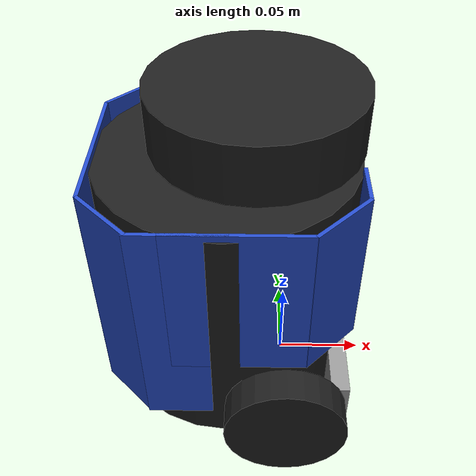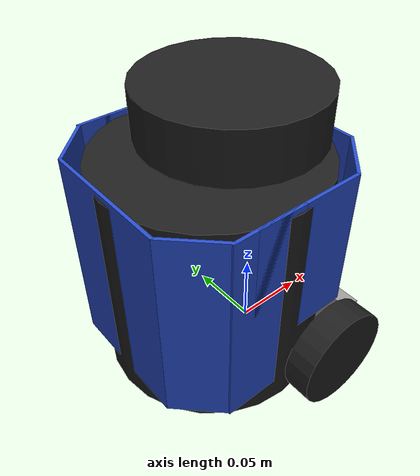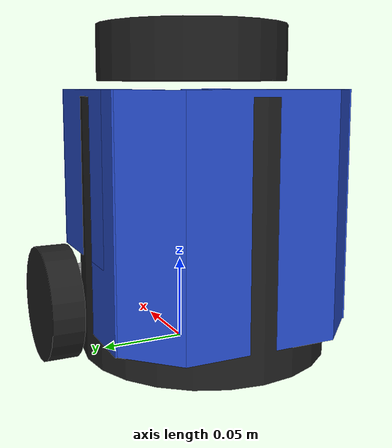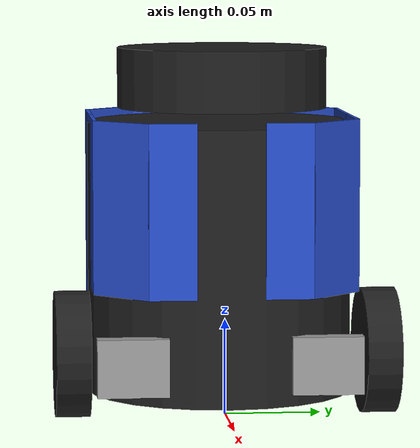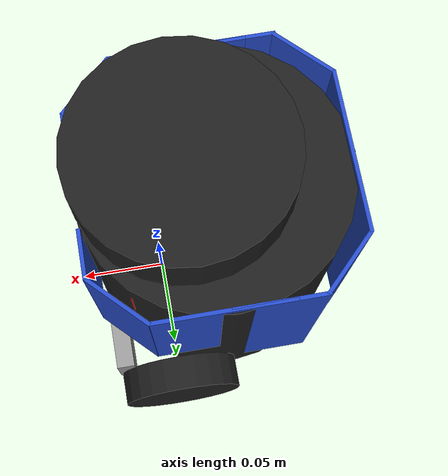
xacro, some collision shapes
<?xml version="1.0" ?>
<robot name="turtlebot3_burger" xmlns:xacro="http://ros.org/wiki/xacro">
  <xacro:include filename="$(find turtlebot3_description)/urdf/common_properties.xacro"/>
  <xacro:include filename="$(find turtlebot3_dqn)/goal_3rb/urdf/turtlebot3_burger_blue.gazebo.xacro"/>

  <link name="base_footprint"/>

  <joint name="base_joint" type="fixed">
    <parent link="base_footprint"/>
    <child link="base_link"/>
    <origin xyz="0.0 0.0 0.010" rpy="0 0 0"/>
  </joint>

  <link name="base_link">
    <visual>
      <origin xyz="-0.032 0 0.0" rpy="0 0 0"/>
      <geometry>
        <mesh filename="package://turtlebot3_description/meshes/bases/burger_base.stl" scale="0.001 0.001 0.001"/>
      </geometry>
      <material name="light_black"/>
    </visual>

    <collision>
      <origin xyz="-0.032 0 0.070" rpy="0 0 0"/>
      <geometry>
        <cylinder length="0.143" radius="0.070"/>
      </geometry>
    </collision>

    <inertial>
      <origin xyz="0 0 0" rpy="0 0 0"/>
      <mass value="8.2573504e-01"/>
      <inertia ixx="2.2124416e-03" ixy="-1.2294101e-05" ixz="3.4938785e-05"
               iyy="2.1193702e-03" iyz="-5.0120904e-06"
               izz="2.0064271e-03" />
    </inertial>
  </link>

  <joint name="wheel_left_joint" type="continuous">
    <parent link="base_link"/>
    <child link="wheel_left_link"/>
    <origin xyz="0.0 0.08 0.023" rpy="-1.57 0 0"/>
    <axis xyz="0 0 1"/>
  </joint>

  <link name="wheel_left_link">
    <visual>
      <origin xyz="0 0 0" rpy="1.57 0 0"/>
      <geometry>
        <mesh filename="package://turtlebot3_description/meshes/wheels/left_tire.stl" scale="0.001 0.001 0.001"/>
      </geometry>
      <material name="dark"/>
    </visual>

    <collision>
      <origin xyz="0 0 0" rpy="0 0 0"/>
      <geometry>
        <cylinder length="0.018" radius="0.033"/>
      </geometry>
    </collision>

    <inertial>
      <origin xyz="0 0 0" />
      <mass value="2.8498940e-02" />
      <inertia ixx="1.1175580e-05" ixy="-4.2369783e-11" ixz="-5.9381719e-09"
               iyy="1.1192413e-05" iyz="-1.4400107e-11"
               izz="2.0712558e-05" />
      </inertial>
  </link>

  <joint name="wheel_right_joint" type="continuous">
    <parent link="base_link"/>
    <child link="wheel_right_link"/>
    <origin xyz="0.0 -0.080 0.023" rpy="-1.57 0 0"/>
    <axis xyz="0 0 1"/>
  </joint>

  <link name="wheel_right_link">
    <visual>
      <origin xyz="0 0 0" rpy="1.57 0 0"/>
      <geometry>
        <mesh filename="package://turtlebot3_description/meshes/wheels/right_tire.stl" scale="0.001 0.001 0.001"/>
      </geometry>
      <material name="dark"/>
    </visual>

    <collision>
      <origin xyz="0 0 0" rpy="0 0 0"/>
      <geometry>
        <cylinder length="0.018" radius="0.033"/>
      </geometry>
    </collision>

    <inertial>
      <origin xyz="0 0 0" />
      <mass value="2.8498940e-02" />
      <inertia ixx="1.1175580e-05" ixy="-4.2369783e-11" ixz="-5.9381719e-09"
               iyy="1.1192413e-05" iyz="-1.4400107e-11"
               izz="2.0712558e-05" />
      </inertial>
  </link>

  <joint name="caster_back_joint" type="fixed">
    <parent link="base_link"/>
    <child link="caster_back_link"/>
    <origin xyz="-0.081 0 -0.004" rpy="-1.57 0 0"/>
  </joint>

  <link name="caster_back_link">
    <collision>
      <origin xyz="0 0.001 0" rpy="0 0 0"/>
      <geometry>
        <box size="0.030 0.009 0.020"/>
      </geometry>
    </collision>

    <inertial>
      <origin xyz="0 0 0" />
      <mass value="0.005" />
      <inertia ixx="0.001" ixy="0.0" ixz="0.0"
               iyy="0.001" iyz="0.0"
               izz="0.001" />
    </inertial>
  </link>

  <joint name="imu_joint" type="fixed">
    <parent link="base_link"/>
    <child link="imu_link"/>
    <origin xyz="-0.032 0 0.068" rpy="0 0 0"/>
  </joint>

  <link name="imu_link"/>

  <joint name="scan_joint" type="fixed">
    <parent link="base_link"/>
    <child link="base_scan"/>
    <origin xyz="-0.032 0 0.172" rpy="0 0 0"/>
  </joint>

  <link name="base_scan">
    <visual>
      <origin xyz="0 0 0.0" rpy="0 0 0"/>
      <geometry>
        <mesh filename="package://turtlebot3_description/meshes/sensors/lds.stl" scale="0.001 0.001 0.001"/>
      </geometry>
      <material name="dark"/>
    </visual>

    <collision>
      <origin xyz="0.015 0 -0.0065" rpy="0 0 0"/>
      <geometry>
        <cylinder length="0.0315" radius="0.055"/>
      </geometry>
    </collision>

    <inertial>
      <mass value="0.114" />
      <origin xyz="0 0 0" />
      <inertia ixx="0.001" ixy="0.0" ixz="0.0"
               iyy="0.001" iyz="0.0"
               izz="0.001" />
    </inertial>
  </link>

  <joint name="cover_right_joint" type="fixed">
    <parent link="base_link"/>
    <child link="cover_right_link"/>
    <origin xyz="0.03 -0.05 0.02" rpy="-1.57 0 0"/>
    <axis xyz="0 0 1"/>
  </joint>

  <link name="cover_right_link">
    <visual>
      <origin xyz="0 0 0" rpy="1.57 0 0"/>
      <geometry>
        <box size="0.01 0.037 0.03" />
      </geometry>
      <material name="dark"/>
    </visual>

    <collision>
      <origin xyz="0 0 0" rpy="0 0 0"/>
      <geometry>
        <box size="0.01 0.037 0.04" />
      </geometry>
    </collision>

    <inertial>
      <origin xyz="0 0 0" rpy="0 0 0"/>
      <mass value="0.005"/>
      <inertia ixx="1e-3" ixy="0" ixz="0"
               iyy="1e-3" iyz="0"
               izz="1e-3" />
    </inertial>
  </link>

  <joint name="cover_left_joint" type="fixed">
    <parent link="base_link"/>
    <child link="cover_left_link"/>
    <origin xyz="0.03 0.05 0.02" rpy="-1.57 0 0"/>
    <axis xyz="0 0 1"/>
  </joint>

  <link name="cover_left_link">
    <visual>
      <origin xyz="0 0 0" rpy="1.57 0 0"/>
      <geometry>
        <box size="0.01 0.037 0.03" />
      </geometry>
      <material name="dark"/>
    </visual>

    <collision>
      <origin xyz="0 0 0" rpy="0 0 0"/>
      <geometry>
        <box size="0.01 0.037 0.04" />
      </geometry>
    </collision>

    <inertial>
      <origin xyz="0 0 0" rpy="0 0 0"/>
      <mass value="0.005"/>
      <inertia ixx="1e-3" ixy="0" ixz="0"
               iyy="1e-3" iyz="0"
               izz="1e-3" />
    </inertial>
  </link>

  <joint name="cover1_joint" type="fixed">
    <parent link="base_link"/>
    <child link="cover1_link"/>
    <origin xyz="-0.025 0.068 0.1" rpy="-1.57 0 0"/>
    <axis xyz="0 0 1"/>
  </joint>

  <link name="cover1_link">
    <visual>
      <origin xyz="0 0 0" rpy="1.57 0 0"/>
      <geometry>
        <box size="0.07 0.002 0.09" />
      </geometry>
      <material name="dark"/>
    </visual>

    <inertial>
      <origin xyz="0 0 0" rpy="0 0 0"/>
      <mass value="0.0005"/>
      <inertia ixx="1e-3" ixy="0" ixz="0"
               iyy="1e-3" iyz="0"
               izz="1e-3" />
    </inertial>

  </link>

  <joint name="cover2_joint" type="fixed">
    <parent link="base_link"/>
    <child link="cover2_link"/>
    <origin xyz="-0.025 -0.068 0.1" rpy="-1.57 0 0"/>
    <axis xyz="0 0 1"/>
  </joint>

  <link name="cover2_link">
    <visual>
      <origin xyz="0 0 0" rpy="1.57 0 0"/>
      <geometry>
        <box size="0.07 0.002 0.09" />
      </geometry>
      <material name="dark"/>
    </visual>

    <inertial>
      <origin xyz="0 0 0" rpy="0 0 0"/>
      <mass value="0.0005"/>
      <inertia ixx="1e-3" ixy="0" ixz="0"
               iyy="1e-3" iyz="0"
               izz="1e-3" />
    </inertial>

  </link>

  <joint name="cover3_joint" type="fixed">
    <parent link="base_link"/>
    <child link="cover3_link"/>
    <origin xyz="-0.10 0.0 0.08" rpy="-1.57 0 0"/>
    <axis xyz="0 0 1"/>
  </joint>

  <link name="cover3_link">
    <visual>
      <origin xyz="0 0 0" rpy="1.57 0 0"/>
      <geometry>
        <box size="0.002 0.085 0.13" />
      </geometry>
      <material name="dark"/>
    </visual>

    <inertial>
      <origin xyz="0 0 0" rpy="0 0 0"/>
      <mass value="0.0005"/>
      <inertia ixx="1e-3" ixy="0" ixz="0"
               iyy="1e-3" iyz="0"
               izz="1e-3" />
    </inertial>

  </link>

  <joint name="cover4_joint" type="fixed">
    <parent link="base_link"/>
    <child link="cover4_link"/>
    <origin xyz="-0.087 -0.055 0.08" rpy="0 0 0.393"/>
    <axis xyz="0 0 1"/>
  </joint>

  <link name="cover4_link">
    <visual>
      <origin xyz="0 0 0" rpy="0 0 0.393"/>
      <geometry>
        <box size="0.002 0.0375 0.13" />
      </geometry>
      <material name="dark"/>
    </visual>

    <inertial>
      <origin xyz="0 0 0" rpy="0 0 0"/>
      <mass value="0.0005"/>
      <inertia ixx="1e-3" ixy="0" ixz="0"
               iyy="1e-3" iyz="0"
               izz="1e-3" />
    </inertial>

  </link>

  <joint name="cover5_joint" type="fixed">
    <parent link="base_link"/>
    <child link="cover5_link"/>
    <origin xyz="-0.087 0.055 0.08" rpy="0 0 -0.393"/>
    <axis xyz="0 0 1"/>
  </joint>

  <link name="cover5_link">
    <visual>
      <origin xyz="0 0 0" rpy="0 0 -0.393"/>
      <geometry>
        <box size="0.002 0.0375 0.13" />
      </geometry>
      <material name="dark"/>
    </visual>

    <inertial>
      <origin xyz="0 0 0" rpy="0 0 0"/>
      <mass value="0.0005"/>
      <inertia ixx="1e-3" ixy="0" ixz="0"
               iyy="1e-3" iyz="0"
               izz="1e-3" />
    </inertial>

  </link>

  <joint name="cover6_joint" type="fixed">
    <parent link="base_link"/>
    <child link="cover6_link"/>
    <origin xyz="-0.052 0.068 0.08" rpy="-1.57 0 0"/>
    <axis xyz="0 0 1"/>
  </joint>

  <link name="cover6_link">
    <visual>
      <origin xyz="0 0 0" rpy="1.57 0 0"/>
      <geometry>
        <box size="0.047 0.002 0.13" />
      </geometry>
      <material name="dark"/>
    </visual>

    <inertial>
      <origin xyz="0 0 0" rpy="0 0 0"/>
      <mass value="0.0005"/>
      <inertia ixx="1e-3" ixy="0" ixz="0"
               iyy="1e-3" iyz="0"
               izz="1e-3" />
    </inertial>

  </link>

  <joint name="cover7_joint" type="fixed">
    <parent link="base_link"/>
    <child link="cover7_link"/>
    <origin xyz="-0.052 -0.068 0.08" rpy="-1.57 0 0"/>
    <axis xyz="0 0 1"/>
  </joint>

  <link name="cover7_link">
    <visual>
      <origin xyz="0 0 0" rpy="1.57 0 0"/>
      <geometry>
        <box size="0.047 0.002 0.13" />
      </geometry>
      <material name="dark"/>
    </visual>

    <inertial>
      <origin xyz="0 0 0" rpy="0 0 0"/>
      <mass value="0.0005"/>
      <inertia ixx="1e-3" ixy="0" ixz="0"
               iyy="1e-3" iyz="0"
               izz="1e-3" />
    </inertial>

  </link>

  <joint name="cover8_joint" type="fixed">
    <parent link="base_link"/>
    <child link="cover8_link"/>
    <origin xyz="0.023 -0.055 0.10" rpy="0 0 0.393"/>
    <axis xyz="0 0 1"/>
  </joint>

  <link name="cover8_link">
    <visual>
      <origin xyz="0 0 0" rpy="0 0 0.393"/>
      <geometry>
        <box size="0.038 0.002 0.09" />
      </geometry>
      <material name="dark"/>
    </visual>

    <inertial>
      <origin xyz="0 0 0" rpy="0 0 0"/>
      <mass value="0.0005"/>
      <inertia ixx="1e-3" ixy="0" ixz="0"
               iyy="1e-3" iyz="0"
               izz="1e-3" />
    </inertial>

  </link>

  <joint name="cover9_joint" type="fixed">
    <parent link="base_link"/>
    <child link="cover9_link"/>
    <origin xyz="0.023 0.055 0.10" rpy="0 0 -0.393"/>
    <axis xyz="0 0 1"/>
  </joint>

  <link name="cover9_link">
    <visual>
      <origin xyz="0 0 0" rpy="0 0 -0.393"/>
      <geometry>
        <box size="0.038 0.002 0.09" />
      </geometry>
      <material name="dark"/>
    </visual>

    <inertial>
      <origin xyz="0 0 0" rpy="0 0 0"/>
      <mass value="0.0005"/>
      <inertia ixx="1e-3" ixy="0" ixz="0"
               iyy="1e-3" iyz="0"
               izz="1e-3" />
    </inertial>

  </link>

   <joint name="cover10_joint" type="fixed">
    <parent link="base_link"/>
    <child link="cover10_link"/>
    <origin xyz="0.036 -0.03 0.10" rpy="1.57 0 0"/>
    <axis xyz="0 0 1"/>
  </joint>

  <link name="cover10_link">
    <visual>
      <origin xyz="0 0 0" rpy="-1.57 0 0"/>
      <geometry>
        <box size="0.002 0.025 0.09" />
      </geometry>
      <material name="dark"/>
    </visual>

    <inertial>
      <origin xyz="0 0 0" rpy="0 0 0"/>
      <mass value="0.0005"/>
      <inertia ixx="1e-3" ixy="0" ixz="0"
               iyy="1e-3" iyz="0"
               izz="1e-3" />
    </inertial>

  </link>

   <joint name="cover11_joint" type="fixed">
    <parent link="base_link"/>
    <child link="cover11_link"/>
    <origin xyz="0.036 0.03 0.10" rpy="1.57 0 0"/>
    <axis xyz="0 0 1"/>
  </joint>

  <link name="cover11_link">
    <visual>
      <origin xyz="0 0 0" rpy="-1.57 0 0"/>
      <geometry>
        <box size="0.002 0.025 0.09" />
      </geometry>
      <material name="dark"/>
    </visual>

    <inertial>
      <origin xyz="0 0 0" rpy="0 0 0"/>
      <mass value="0.0005"/>
      <inertia ixx="1e-3" ixy="0" ixz="0"
               iyy="1e-3" iyz="0"
               izz="1e-3" />
    </inertial>

  </link>

</robot>

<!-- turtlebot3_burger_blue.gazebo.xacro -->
<robot name="turtlebot3_burger_sim" xmlns:xacro="http://ros.org/wiki/xacro">
  <xacro:arg name="laser_visual" default="false"/>
  <xacro:arg name="imu_visual"   default="false"/>

  <gazebo reference="base_link">
    <material>Gazebo/DarkGrey</material>
  </gazebo>

  <gazebo reference="wheel_left_link">
    <mu1>0.1</mu1>
    <mu2>0.1</mu2>
    <kp>500000.0</kp>
    <kd>10.0</kd>
    <minDepth>0.001</minDepth>
    <maxVel>0.1</maxVel>
    <fdir1>1 0 0</fdir1>
    <material>Gazebo/FlatBlack</material>
  </gazebo>

  <gazebo reference="wheel_right_link">
    <mu1>0.1</mu1>
    <mu2>0.1</mu2>
    <kp>500000.0</kp>
    <kd>10.0</kd>
    <minDepth>0.001</minDepth>
    <maxVel>0.1</maxVel>
    <fdir1>1 0 0</fdir1>
    <material>Gazebo/FlatBlack</material>
  </gazebo>

  <gazebo reference="caster_back_link">
    <mu1>0.1</mu1>
    <mu2>0.1</mu2>
    <kp>1000000.0</kp>
    <kd>100.0</kd>
    <minDepth>0.001</minDepth>
    <maxVel>1.0</maxVel>
    <material>Gazebo/FlatBlack</material>
  </gazebo>

  <gazebo reference="cover_right_link">
    <material>Gazebo/Grey</material>
  </gazebo>

  <gazebo reference="cover_left_link">
    <material>Gazebo/Grey</material>
  </gazebo>

  <gazebo reference="cover1_link">
    <material>Gazebo/Blue</material>
  </gazebo>

  <gazebo reference="cover2_link">
    <material>Gazebo/Blue</material>
  </gazebo>

  <gazebo reference="cover3_link">
    <material>Gazebo/Blue</material>
  </gazebo>

  <gazebo reference="cover4_link">
    <material>Gazebo/Blue</material>
  </gazebo>

  <gazebo reference="cover5_link">
    <material>Gazebo/Blue</material>
  </gazebo>

  <gazebo reference="cover6_link">
    <material>Gazebo/Blue</material>
  </gazebo>

  <gazebo reference="cover7_link">
    <material>Gazebo/Blue</material>
  </gazebo>

  <gazebo reference="cover8_link">
    <material>Gazebo/Blue</material>
  </gazebo>

  <gazebo reference="cover9_link">
    <material>Gazebo/Blue</material>
  </gazebo>

  <gazebo reference="cover10_link">
    <material>Gazebo/Blue</material>
  </gazebo>

  <gazebo reference="cover11_link">
    <material>Gazebo/Blue</material>
  </gazebo>

  <gazebo reference="imu_link">
    <sensor type="imu" name="imu">
      <always_on>true</always_on>
      <visualize>$(arg imu_visual)</visualize>
    </sensor>
    <material>Gazebo/FlatBlack</material>
  </gazebo>

  <gazebo>
    <plugin name="turtlebot3_burger_controller" filename="libgazebo_ros_diff_drive.so">
      <commandTopic>cmd_vel</commandTopic>
      <odometryTopic>odom</odometryTopic>
      <odometryFrame>odom</odometryFrame>
      <odometrySource>world</odometrySource>
      <publishOdomTF>true</publishOdomTF>
      <robotBaseFrame>base_footprint</robotBaseFrame>
      <publishWheelTF>false</publishWheelTF>
      <publishTf>true</publishTf>
      <publishWheelJointState>true</publishWheelJointState>
      <legacyMode>false</legacyMode>
      <updateRate>30</updateRate>
      <leftJoint>wheel_left_joint</leftJoint>
      <rightJoint>wheel_right_joint</rightJoint>
      <wheelSeparation>0.160</wheelSeparation>
      <wheelDiameter>0.066</wheelDiameter>
      <wheelAcceleration>1</wheelAcceleration>
      <wheelTorque>10</wheelTorque>
      <rosDebugLevel>na</rosDebugLevel>
    </plugin>
  </gazebo>

  <gazebo>
    <plugin name="imu_plugin" filename="libgazebo_ros_imu.so">
      <alwaysOn>true</alwaysOn>
      <bodyName>imu_link</bodyName>
      <frameName>imu_link</frameName>
      <topicName>imu</topicName>
      <serviceName>imu_service</serviceName>
      <gaussianNoise>0.0</gaussianNoise>
      <updateRate>0</updateRate>
      <imu>
        <noise>
          <type>gaussian</type>
          <rate>
            <mean>0.0</mean>
            <stddev>2e-4</stddev>
            <bias_mean>0.0000075</bias_mean>
            <bias_stddev>0.0000008</bias_stddev>
          </rate>
          <accel>
            <mean>0.0</mean>
            <stddev>1.7e-2</stddev>
            <bias_mean>0.1</bias_mean>
            <bias_stddev>0.001</bias_stddev>
          </accel>
        </noise>
      </imu>
    </plugin>
  </gazebo>

  <gazebo reference="base_scan">
    <material>Gazebo/FlatBlack</material>
    <sensor type="ray" name="lds_lfcd_sensor">
      <pose>0 0 0 0 0 0</pose>
      <visualize>$(arg laser_visual)</visualize>
      <update_rate>5</update_rate>
      <ray>
        <scan>
          <horizontal>
            <samples>360</samples>
            <resolution>1</resolution>
            <min_angle>0.0</min_angle>
            <max_angle>6.28319</max_angle>
          </horizontal>
        </scan>
        <range>
          <min>0.080</min>
          <max>3.5</max>
          <resolution>0.015</resolution>
        </range>
        <noise>
          <type>gaussian</type>
          <mean>0.0</mean>
          <stddev>0.01</stddev>
        </noise>
      </ray>
      <plugin name="gazebo_ros_lds_lfcd_controller" filename="libgazebo_ros_laser.so">
        <topicName>scan</topicName>
        <frameName>base_scan</frameName>
      </plugin>
    </sensor>
  </gazebo>
  <xacro:include filename="$(find turtlebot3_dqn)/goal_3rb/urdf/camera_macro.xacro"/>
  <xacro:camera_macro prefix="usb_cam" parent="base_link" xyz="0.06 0.0 0.08"/>
</robot>

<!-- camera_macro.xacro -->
<robot name="dtw_robot" xmlns:xacro="http://ros.org/wiki/xacro">

  <xacro:macro name="material_color" params="r g b a">
    <material name="custom_color">
      <color rgba="${r} ${g} ${b} ${a}" />
    </material>
  </xacro:macro>

  <xacro:macro name="camera_macro" params="parent prefix xyz">

    <joint name="${prefix}_joint" type="fixed">
      <parent link="${parent}"/>
      <child  link="${prefix}_link"/>
      <origin xyz="${xyz}" rpy="${radians(-90)} 0 ${radians(-90)}"/>
    </joint>

    <link name="${prefix}_link">
      <visual>
        <geometry>
          <box size="0.1 0.025 0.015" />
        </geometry>
        <origin xyz="0 -0.03 -0.05" rpy="0 0 0 " />
        <material name="custom_color">
          <color rgba="1 0 0 1"/> <!-- 赤色 -->
        </material>
      </visual>

    </link>
    <gazebo reference="${prefix}_link">
      <material>Gazebo/Black</material>

      <sensor type="camera" name="${prefix}">
        <update_rate>10.0</update_rate>
        <camera name="${prefix}">
          <pose>0 0 0 0 ${radians(-90)} ${radians(90)}</pose>
          <horizontal_fov>2.0944</horizontal_fov>
          <image>
            <width>1920</width>
            <height>1080</height>
            <format>R8G8B8</format>
          </image>
          <clip>
            <near>0.02</near>
            <far>300</far>
          </clip>
          <noise>
            <type>gaussian</type>
            <mean>0.0</mean>
            <stddev>0.007</stddev>
          </noise>
        </camera>
        <plugin name="camera_controller" filename="libgazebo_ros_camera.so">
          <alwaysOn>true</alwaysOn>
          <updateRate>0.0</updateRate>
          <cameraName>${prefix}</cameraName>
          <imageTopicName>image_raw</imageTopicName>
          <cameraInfoTopicName>camera_info</cameraInfoTopicName>
          <frameName>${prefix}_link</frameName>
          <hackBaseline>0.0</hackBaseline>
          <distortionK1>0.0</distortionK1>
          <distortionK2>0.0</distortionK2>
          <distortionK3>0.0</distortionK3>
          <distortionT1>0.0</distortionT1>
          <distortionT2>0.0</distortionT2>
        </plugin>
      </sensor>
    </gazebo>
  </xacro:macro>

  <!-- prefix = stereo_camera -->
  <xacro:macro name="stereo_camera_macro" params="parent prefix xyz">

    <joint name="${prefix}_joint" type="fixed">
      <parent link="${parent}"/>
      <child  link="${prefix}_frame"/>
      <origin xyz="${xyz}" rpy="0 0 0"/>
    </joint>

    <link name="${prefix}_frame">
      <visual>
        <geometry>
          <box size="0.03 0.06 0.03" />
        </geometry>
        <origin xyz="0 0 0" rpy="0 0 0 " />
        <material name="custom_color">
          <color rgba="1 0 0 1"/> <!-- 赤色 -->
        </material>
      </visual>
    </link>
    <gazebo reference="${prefix}_frame">
      <material>Gazebo/Red</material>

      <sensor type="multicamera" name="${prefix}">
        <update_rate>30.0</update_rate>

        <camera name="left">
          <pose>0 0.035 0 0 0 0</pose>
          <horizontal_fov>1.3962634</horizontal_fov>
          <image>
            <width>800</width>
            <height>800</height>
            <format>R8G8B8</format>
          </image>
          <clip>
            <near>0.02</near>
            <far>300</far>
          </clip>
          <noise>
            <type>gaussian</type>
            <mean>0.0</mean>
            <stddev>0.007</stddev>
          </noise>
        </camera>
        <camera name="right">
          <pose>0 -0.035 0 0 0 0</pose>
          <horizontal_fov>1.3962634</horizontal_fov>
          <image>
            <width>800</width>
            <height>800</height>
            <format>R8G8B8</format>
          </image>
          <clip>
            <near>0.02</near>
            <far>300</far>
          </clip>
          <noise>
            <type>gaussian</type>
            <mean>0.0</mean>
            <stddev>0.007</stddev>
          </noise>
        </camera>

        <plugin name="stereo_camera_controller" filename="libgazebo_ros_multicamera.so">
          <alwaysOn>true</alwaysOn>
          <updateRate>0.0</updateRate>
          <cameraName>${prefix}</cameraName>
          <imageTopicName>image_raw</imageTopicName>
          <cameraInfoTopicName>camera_info</cameraInfoTopicName>
          <frameName>${prefix}_optical_frame</frameName>
          <hackBaseline>0.07</hackBaseline>
          <distortionK1>0.0</distortionK1>
          <distortionK2>0.0</distortionK2>
          <distortionK3>0.0</distortionK3>
          <distortionT1>0.0</distortionT1>
          <distortionT2>0.0</distortionT2>
        </plugin>
      </sensor>
    </gazebo>
  </xacro:macro>
</robot>
